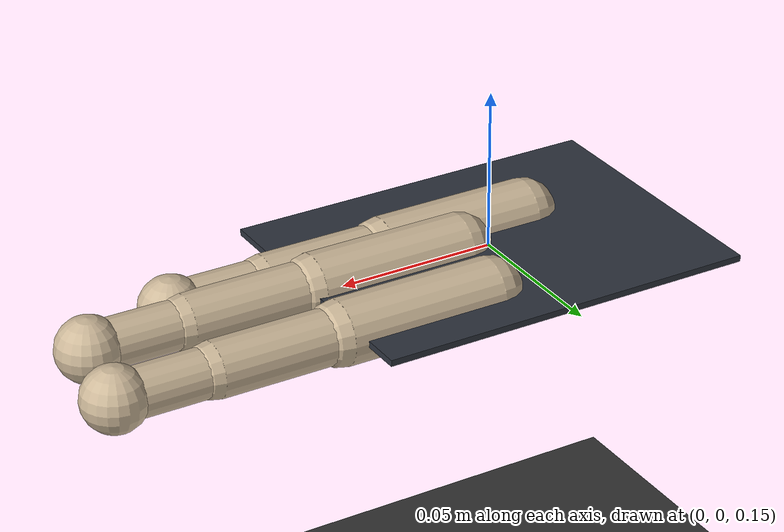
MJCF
<mujoco model="hand_tp0d0087p0d0139p0d0000_ip0d0141n0d0071p0d0000_mp0d0075p0d0251p0d0015">
  <compiler angle="radian" autolimits="true" />
  <option timestep="0.002" gravity="0 0 -9.81" integrator="implicitfast" />
  <visual>
    <headlight ambient=".4 .4 .4" diffuse=".8 .8 .8" specular="0.1 0.1 0.1" />
    <map znear=".01" />
    <quality shadowsize="2048" />
    <global elevation="-15" />
  </visual>
  <default>
    <geom friction="1.0 0.05 0.001" solref="0.01 1" solimp="0.95 0.99 0.001" />
    <default class="ctrl">
      <joint type="hinge" damping="0.5" armature="0.001" />
      <position kp="30" kv="0.5" gear="1" forcerange="-10 10" ctrlrange="-1 1" />
    </default>
  </default>
  <asset>
    <texture type="skybox" builtin="gradient" rgb1="0.3 0.5 0.7" rgb2="0 0 0" width="512" height="3072" />
    <texture type="2d" name="groundplane" builtin="checker" mark="edge" rgb1="0.2 0.3 0.4" rgb2="0.1 0.2 0.3" markrgb="0.8 0.8 0.8" width="300" height="300" />
    <material name="groundplane" texture="groundplane" texuniform="true" texrepeat="5 5" reflectance="0.2" />
    <texture name="grid" type="2d" builtin="checker" rgb1="0.15 0.15 0.15" rgb2="0.25 0.25 0.25" width="256" height="256" />
    <material name="table_mat" texture="grid" texrepeat="3 3" reflectance="0.2" />
    <material name="palm_mat" rgba="0.18 0.2 0.24 1" />
    <material name="finger_mat" rgba="0.8 0.72 0.6 1" />
    <material name="object_mat" rgba="0.18 0.5 0.9 1" />
  </asset>
  <worldbody>
    <geom name="floor" type="plane" size="1.5 1.5 0.1" material="table_mat" contype="0" conaffinity="0" />
    <body gravcomp="1" name="palm" pos="0 0 0.15">
      <geom type="box" size="0.06 0.045 0.001" material="palm_mat" contype="0" conaffinity="0" />
      <body gravcomp="1" name="thumb_mount" pos="-0.021343 -0.014068 0">
        <inertial pos="0 0 0" mass="0.001" diaginertia="1e-6 1e-6 1e-6" />
        <body gravcomp="1" name="thumb_yaw_frame">
          <inertial pos="0 0 0" mass="0.001" diaginertia="1e-6 1e-6 1e-6" />
          <joint class="ctrl" name="thumb_yaw" axis="1 0 0" range="-1.1 1.1" />
          <body gravcomp="1" name="thumb_mcp_frame">
            <joint class="ctrl" name="thumb_mcp" axis="0 1 0" range="0 3.14" />
            <geom type="capsule" fromto="0 0 0 0.05 0 0" size="0.010" material="finger_mat" />
            <body gravcomp="1" name="thumb_len_frame" pos="0.05 0 0">
              <geom type="capsule" fromto="0 0 0 0.04 0 0" size="0.0085" material="finger_mat" />
              <body gravcomp="1" name="thumb_pip_frame" pos="0.04 0 0">
                <joint class="ctrl" name="thumb_pip" axis="0 1 0" range="-1.2 0.5" />
                <geom type="capsule" fromto="0 0 0 0.03 0 0" size="0.0075" material="finger_mat" />
                <body gravcomp="1" name="thumb_tip" pos="0.03 0 0">
                  <geom type="sphere" size="0.010" material="finger_mat" />
                </body>
              </body>
            </body>
          </body>
        </body>
      </body>
      <body gravcomp="1" name="index_mount" pos="0.014081 0.022851 0">
        <inertial pos="0 0 0" mass="0.001" diaginertia="1e-6 1e-6 1e-6" />
        <body gravcomp="1" name="index_yaw_frame">
          <inertial pos="0 0 0" mass="0.001" diaginertia="1e-6 1e-6 1e-6" />
          <joint class="ctrl" name="index_yaw" axis="1 0 0" range="-1.1 1.1" />
          <body gravcomp="1" name="index_mcp_frame">
            <joint class="ctrl" name="index_mcp" axis="0 1 0" range="0 2.5" />
            <geom type="capsule" fromto="0 0 0 0.05 0 0" size="0.010" material="finger_mat" />
            <body gravcomp="1" name="index_len_frame" pos="0.05 0 0">
              <geom type="capsule" fromto="0 0 0 0.04 0 0" size="0.0085" material="finger_mat" />
              <body gravcomp="1" name="index_pip_frame" pos="0.04 0 0">
                <joint class="ctrl" name="index_pip" axis="0 1 0" range="-1.2 1.57" />
                <geom type="capsule" fromto="0 0 0 0.03 0 0" size="0.0075" material="finger_mat" />
                <body gravcomp="1" name="index_tip" pos="0.03 0 0">
                  <geom type="sphere" size="0.010" material="finger_mat" />
                </body>
              </body>
            </body>
          </body>
        </body>
      </body>
      <body gravcomp="1" name="middle_mount" pos="0.007493 -0.004854 0">
        <inertial pos="0 0 0" mass="0.001" diaginertia="1e-6 1e-6 1e-6" />
        <body gravcomp="1" name="middle_yaw_frame">
          <inertial pos="0 0 0" mass="0.001" diaginertia="1e-6 1e-6 1e-6" />
          <joint class="ctrl" name="middle_yaw" axis="1 0 0" range="-1.1 1.1" />
          <body gravcomp="1" name="middle_mcp_frame">
            <joint class="ctrl" name="middle_mcp" axis="0 1 0" range="0 2.5" />
            <geom type="capsule" fromto="0 0 0 0.05 0 0" size="0.010" material="finger_mat" />
            <body gravcomp="1" name="middle_len_frame" pos="0.051474 0 0">
              <geom type="capsule" fromto="0 0 0 0.04 0 0" size="0.0085" material="finger_mat" />
              <body gravcomp="1" name="middle_pip_frame" pos="0.04 0 0">
                <joint class="ctrl" name="middle_pip" axis="0 1 0" range="-1.2 1.57" />
                <geom type="capsule" fromto="0 0 0 0.03 0 0" size="0.0075" material="finger_mat" />
                <body gravcomp="1" name="middle_tip" pos="0.03 0 0">
                  <geom type="sphere" size="0.010" material="finger_mat" />
                </body>
              </body>
            </body>
          </body>
        </body>
      </body>
    </body>
  </worldbody>
  <actuator>
    <position class="ctrl" name="a_thumb_yaw" joint="thumb_yaw" ctrlrange="-1.1 1.1" />
    <position class="ctrl" name="a_thumb_mcp" joint="thumb_mcp" ctrlrange="0 3.14" />
    <position class="ctrl" name="a_thumb_pip" joint="thumb_pip" ctrlrange="-1.2 0.5" />
    <position class="ctrl" name="a_index_yaw" joint="index_yaw" ctrlrange="-1.1 1.1" />
    <position class="ctrl" name="a_index_mcp" joint="index_mcp" ctrlrange="0 2.5" />
    <position class="ctrl" name="a_index_pip" joint="index_pip" ctrlrange="-1.2 1.57" />
    <position class="ctrl" name="a_middle_yaw" joint="middle_yaw" ctrlrange="-1.1 1.1" />
    <position class="ctrl" name="a_middle_mcp" joint="middle_mcp" ctrlrange="0 2.5" />
    <position class="ctrl" name="a_middle_pip" joint="middle_pip" ctrlrange="-1.2 1.57" />
  </actuator>
  <keyframe>
    <key name="open" qpos="&#10;        0 2 -0.707 0 1.25 1 0 1.25 1&#10;      " ctrl="&#10;        0 2 -0.707 0 1.25 1 0 1.25 1&#10;      " />
  </keyframe>
</mujoco>
